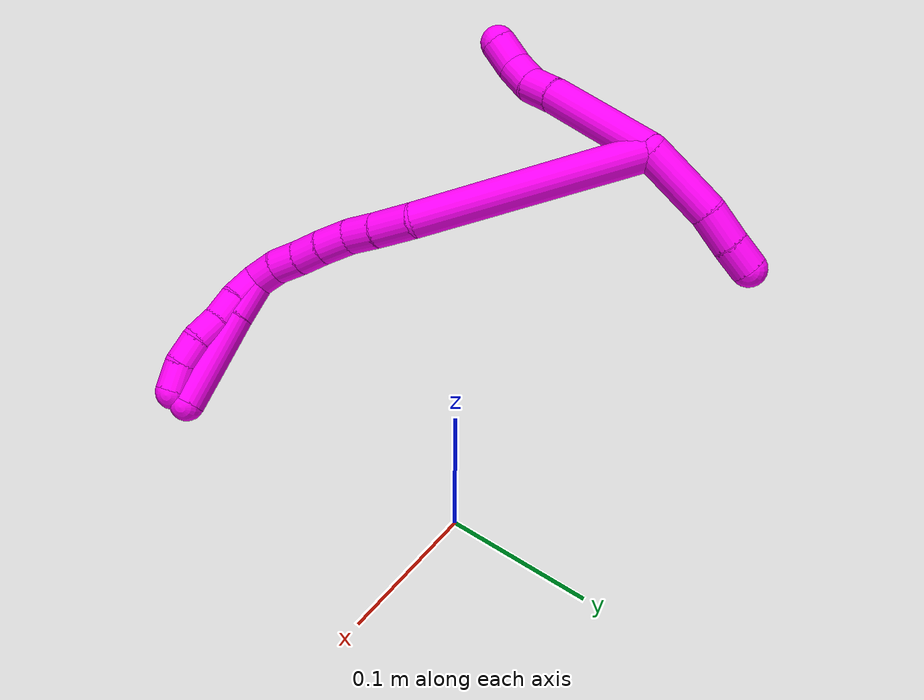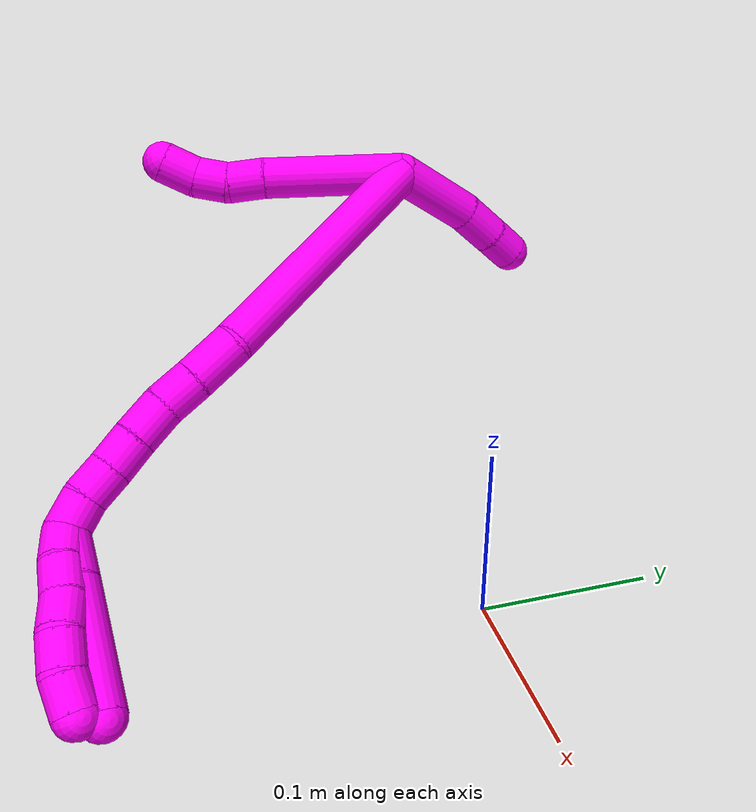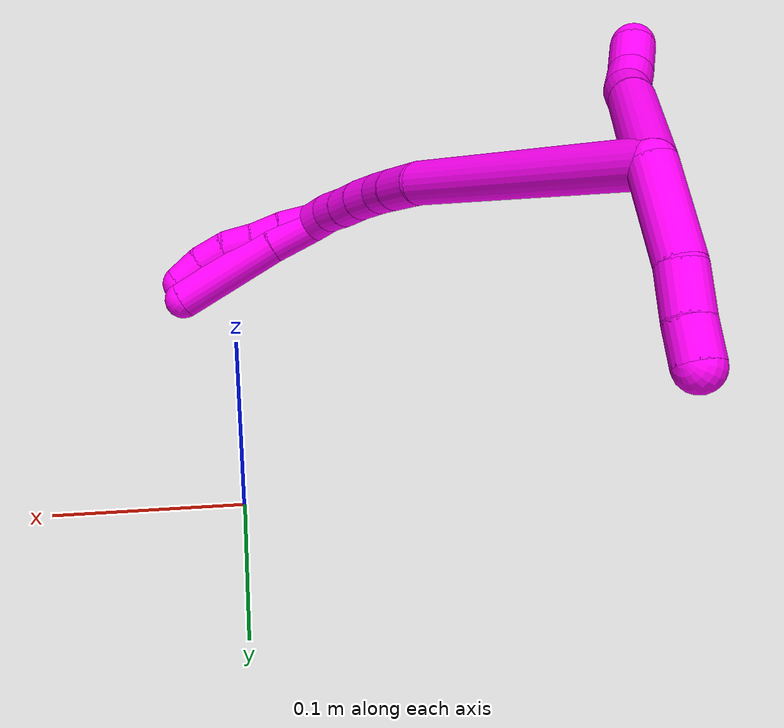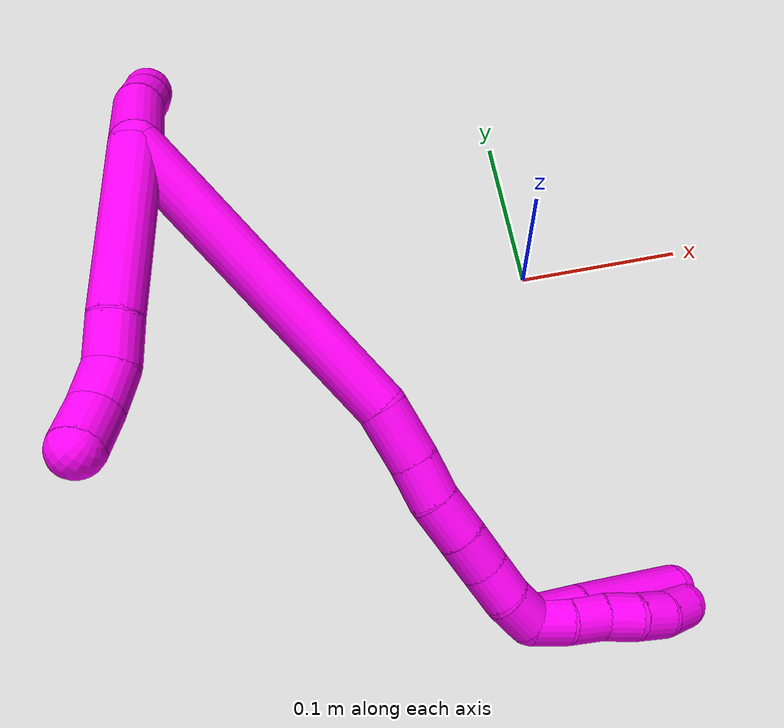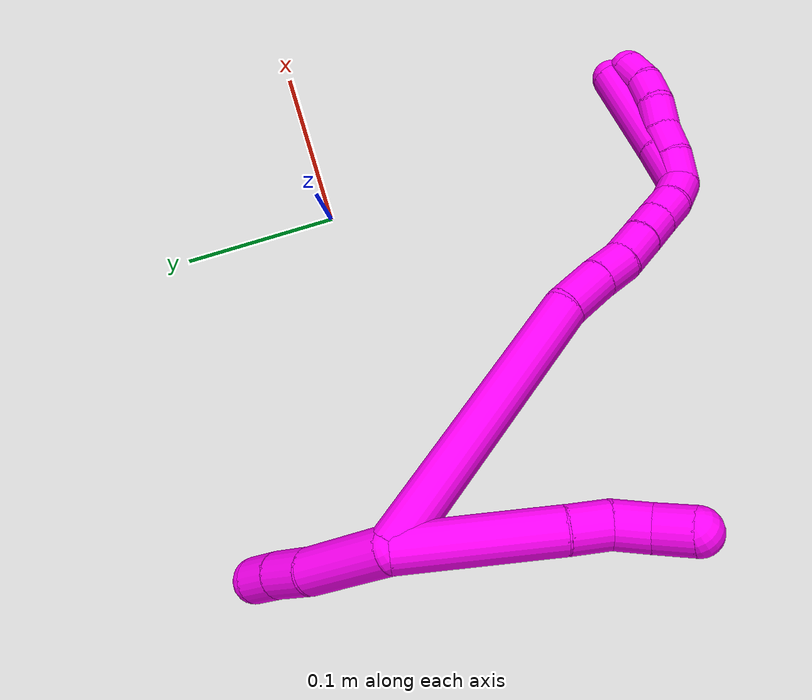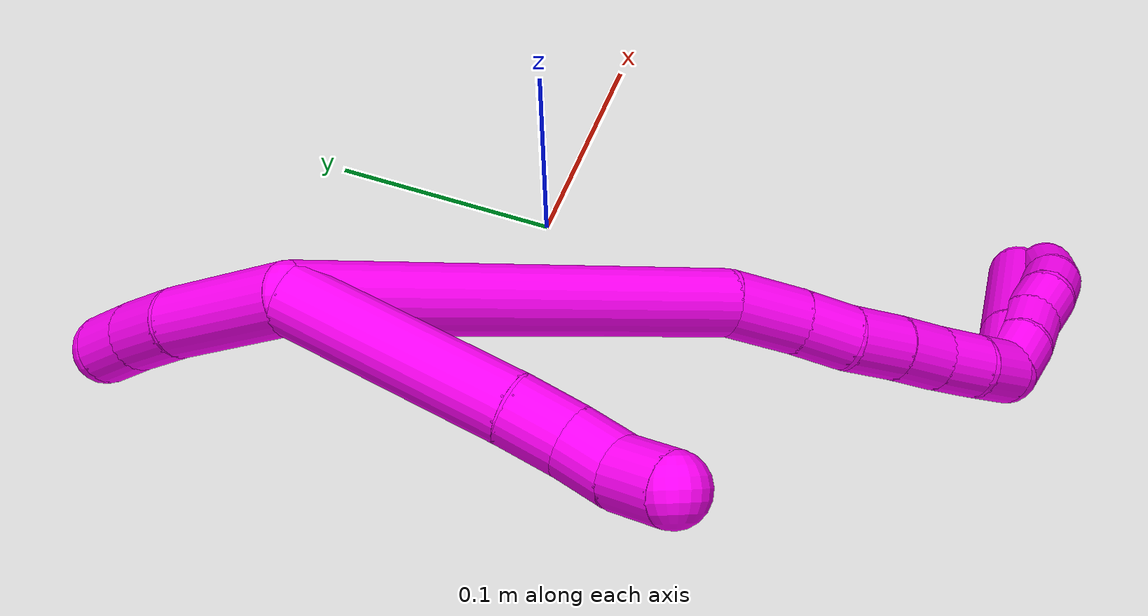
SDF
<sdf version="1.7">
 <world name="default">
  <model name="10">
   <static>0</static>
   <link name="10">
    <collision name="collision-cylinder-e_1_2_8">
     <pose>0.008393 -0.037059 -0.019782 2.06112 0.197188 0.326909</pose>
     <geometry><cylinder><radius>0.0125</radius><length>0.085677</length></cylinder></geometry>
     <surface>
      <friction><ode><mu>1.16</mu><mu2>1.16</mu2><slip1>0</slip1><slip2>0</slip2></ode></friction>
      <contact><ode><kp>1e+06</kp><kd>1</kd><max_vel>0</max_vel><min_depth>0.001</min_depth></ode></contact>
     </surface>
    </collision>
    <visual name="visual-cylinder-e_1_2_8">
     <pose>0.008393 -0.037059 -0.019782 2.06112 0.197188 0.326909</pose>
     <geometry><cylinder><radius>0.0125</radius><length>0.085677</length></cylinder></geometry>
     <material><ambient>1 0 0.964706 1</ambient></material>
    </visual>
    <collision name="collision-cylinder-e_2_8_9">
     <pose>0.019775 -0.083209 -0.045156 2.12228 0.273165 0.48224</pose>
     <geometry><cylinder><radius>0.0125</radius><length>0.022167</length></cylinder></geometry>
     <surface>
      <friction><ode><mu>1.16</mu><mu2>1.16</mu2><slip1>0</slip1><slip2>0</slip2></ode></friction>
      <contact><ode><kp>1e+06</kp><kd>1</kd><max_vel>0</max_vel><min_depth>0.001</min_depth></ode></contact>
     </surface>
    </collision>
    <visual name="visual-cylinder-e_2_8_9">
     <pose>0.019775 -0.083209 -0.045156 2.12228 0.273165 0.48224</pose>
     <geometry><cylinder><radius>0.0125</radius><length>0.022167</length></cylinder></geometry>
     <material><ambient>1 0 0.964706 1</ambient></material>
    </visual>
    <collision name="collision-cylinder-e_3_9_10">
     <pose>0.022374 -0.101177 -0.055748 2.0837 -0.038361 -0.065614</pose>
     <geometry><cylinder><radius>0.0125</radius><length>0.020393</length></cylinder></geometry>
     <surface>
      <friction><ode><mu>1.16</mu><mu2>1.16</mu2><slip1>0</slip1><slip2>0</slip2></ode></friction>
      <contact><ode><kp>1e+06</kp><kd>1</kd><max_vel>0</max_vel><min_depth>0.001</min_depth></ode></contact>
     </surface>
    </collision>
    <visual name="visual-cylinder-e_3_9_10">
     <pose>0.022374 -0.101177 -0.055748 2.0837 -0.038361 -0.065614</pose>
     <geometry><cylinder><radius>0.0125</radius><length>0.020393</length></cylinder></geometry>
     <material><ambient>1 0 0.964706 1</ambient></material>
    </visual>
    <collision name="collision-cylinder-e_4_10_6">
     <pose>0.01967 -0.120323 -0.063506 1.83323 -0.214278 -0.278691</pose>
     <geometry><cylinder><radius>0.0125</radius><length>0.021763</length></cylinder></geometry>
     <surface>
      <friction><ode><mu>1.16</mu><mu2>1.16</mu2><slip1>0</slip1><slip2>0</slip2></ode></friction>
      <contact><ode><kp>1e+06</kp><kd>1</kd><max_vel>0</max_vel><min_depth>0.001</min_depth></ode></contact>
     </surface>
    </collision>
    <visual name="visual-cylinder-e_4_10_6">
     <pose>0.01967 -0.120323 -0.063506 1.83323 -0.214278 -0.278691</pose>
     <geometry><cylinder><radius>0.0125</radius><length>0.021763</length></cylinder></geometry>
     <material><ambient>1 0 0.964706 1</ambient></material>
    </visual>
    <collision name="collision-cylinder-e_1_2_11">
     <pose>0.003135 0.026551 -0.002238 -1.65488 0.117121 -0.127381</pose>
     <geometry><cylinder><radius>0.0125</radius><length>0.053657</length></cylinder></geometry>
     <surface>
      <friction><ode><mu>1.16</mu><mu2>1.16</mu2><slip1>0</slip1><slip2>0</slip2></ode></friction>
      <contact><ode><kp>1e+06</kp><kd>1</kd><max_vel>0</max_vel><min_depth>0.001</min_depth></ode></contact>
     </surface>
    </collision>
    <visual name="visual-cylinder-e_1_2_11">
     <pose>0.003135 0.026551 -0.002238 -1.65488 0.117121 -0.127381</pose>
     <geometry><cylinder><radius>0.0125</radius><length>0.053657</length></cylinder></geometry>
     <material><ambient>1 0 0.964706 1</ambient></material>
    </visual>
    <collision name="collision-cylinder-e_2_11_12">
     <pose>0.00974 0.06538 -0.005887 -1.68528 0.273678 -0.306459</pose>
     <geometry><cylinder><radius>0.0125</radius><length>0.025674</length></cylinder></geometry>
     <surface>
      <friction><ode><mu>1.16</mu><mu2>1.16</mu2><slip1>0</slip1><slip2>0</slip2></ode></friction>
      <contact><ode><kp>1e+06</kp><kd>1</kd><max_vel>0</max_vel><min_depth>0.001</min_depth></ode></contact>
     </surface>
    </collision>
    <visual name="visual-cylinder-e_2_11_12">
     <pose>0.00974 0.06538 -0.005887 -1.68528 0.273678 -0.306459</pose>
     <geometry><cylinder><radius>0.0125</radius><length>0.025674</length></cylinder></geometry>
     <material><ambient>1 0 0.964706 1</ambient></material>
    </visual>
    <collision name="collision-cylinder-e_3_12_5">
     <pose>0.015622 0.087555 -0.00904 -1.74491 0.2357 -0.280235</pose>
     <geometry><cylinder><radius>0.0125</radius><length>0.020669</length></cylinder></geometry>
     <surface>
      <friction><ode><mu>1.16</mu><mu2>1.16</mu2><slip1>0</slip1><slip2>0</slip2></ode></friction>
      <contact><ode><kp>1e+06</kp><kd>1</kd><max_vel>0</max_vel><min_depth>0.001</min_depth></ode></contact>
     </surface>
    </collision>
    <visual name="visual-cylinder-e_3_12_5">
     <pose>0.015622 0.087555 -0.00904 -1.74491 0.2357 -0.280235</pose>
     <geometry><cylinder><radius>0.0125</radius><length>0.020669</length></cylinder></geometry>
     <material><ambient>1 0 0.964706 1</ambient></material>
    </visual>
    <collision name="collision-cylinder-e_1_2_13">
     <pose>0.068359 -0.045595 -0.001023 1.59323 0.982452 1.00123</pose>
     <geometry><cylinder><radius>0.0125</radius><length>0.164351</length></cylinder></geometry>
     <surface>
      <friction><ode><mu>1.16</mu><mu2>1.16</mu2><slip1>0</slip1><slip2>0</slip2></ode></friction>
      <contact><ode><kp>1e+06</kp><kd>1</kd><max_vel>0</max_vel><min_depth>0.001</min_depth></ode></contact>
     </surface>
    </collision>
    <visual name="visual-cylinder-e_1_2_13">
     <pose>0.068359 -0.045595 -0.001023 1.59323 0.982452 1.00123</pose>
     <geometry><cylinder><radius>0.0125</radius><length>0.164351</length></cylinder></geometry>
     <material><ambient>1 0 0.964706 1</ambient></material>
    </visual>
    <collision name="collision-cylinder-e_2_13_14">
     <pose>0.148705 -0.099357 -0.005565 1.9776 0.932534 1.30585</pose>
     <geometry><cylinder><radius>0.0125</radius><length>0.029853</length></cylinder></geometry>
     <surface>
      <friction><ode><mu>1.16</mu><mu2>1.16</mu2><slip1>0</slip1><slip2>0</slip2></ode></friction>
      <contact><ode><kp>1e+06</kp><kd>1</kd><max_vel>0</max_vel><min_depth>0.001</min_depth></ode></contact>
     </surface>
    </collision>
    <visual name="visual-cylinder-e_2_13_14">
     <pose>0.148705 -0.099357 -0.005565 1.9776 0.932534 1.30585</pose>
     <geometry><cylinder><radius>0.0125</radius><length>0.029853</length></cylinder></geometry>
     <material><ambient>1 0 0.964706 1</ambient></material>
    </visual>
    <collision name="collision-cylinder-e_3_14_15">
     <pose>0.169258 -0.113727 -0.01227 2.04539 0.887479 1.32316</pose>
     <geometry><cylinder><radius>0.0125</radius><length>0.022089</length></cylinder></geometry>
     <surface>
      <friction><ode><mu>1.16</mu><mu2>1.16</mu2><slip1>0</slip1><slip2>0</slip2></ode></friction>
      <contact><ode><kp>1e+06</kp><kd>1</kd><max_vel>0</max_vel><min_depth>0.001</min_depth></ode></contact>
     </surface>
    </collision>
    <visual name="visual-cylinder-e_3_14_15">
     <pose>0.169258 -0.113727 -0.01227 2.04539 0.887479 1.32316</pose>
     <geometry><cylinder><radius>0.0125</radius><length>0.022089</length></cylinder></geometry>
     <material><ambient>1 0 0.964706 1</ambient></material>
    </visual>
    <collision name="collision-cylinder-e_4_15_16">
     <pose>0.187843 -0.125414 -0.017375 1.90722 1.04531 1.36376</pose>
     <geometry><cylinder><radius>0.0125</radius><length>0.023164</length></cylinder></geometry>
     <surface>
      <friction><ode><mu>1.16</mu><mu2>1.16</mu2><slip1>0</slip1><slip2>0</slip2></ode></friction>
      <contact><ode><kp>1e+06</kp><kd>1</kd><max_vel>0</max_vel><min_depth>0.001</min_depth></ode></contact>
     </surface>
    </collision>
    <visual name="visual-cylinder-e_4_15_16">
     <pose>0.187843 -0.125414 -0.017375 1.90722 1.04531 1.36376</pose>
     <geometry><cylinder><radius>0.0125</radius><length>0.023164</length></cylinder></geometry>
     <material><ambient>1 0 0.964706 1</ambient></material>
    </visual>
    <collision name="collision-cylinder-e_5_16_17">
     <pose>0.206854 -0.135258 -0.021287 1.99979 1.08097 1.50297</pose>
     <geometry><cylinder><radius>0.0125</radius><length>0.020381</length></cylinder></geometry>
     <surface>
      <friction><ode><mu>1.16</mu><mu2>1.16</mu2><slip1>0</slip1><slip2>0</slip2></ode></friction>
      <contact><ode><kp>1e+06</kp><kd>1</kd><max_vel>0</max_vel><min_depth>0.001</min_depth></ode></contact>
     </surface>
    </collision>
    <visual name="visual-cylinder-e_5_16_17">
     <pose>0.206854 -0.135258 -0.021287 1.99979 1.08097 1.50297</pose>
     <geometry><cylinder><radius>0.0125</radius><length>0.020381</length></cylinder></geometry>
     <material><ambient>1 0 0.964706 1</ambient></material>
    </visual>
    <collision name="collision-cylinder-e_6_17_18">
     <pose>0.224531 -0.144375 -0.024974 1.91257 1.04413 1.36798</pose>
     <geometry><cylinder><radius>0.0125</radius><length>0.020092</length></cylinder></geometry>
     <surface>
      <friction><ode><mu>1.16</mu><mu2>1.16</mu2><slip1>0</slip1><slip2>0</slip2></ode></friction>
      <contact><ode><kp>1e+06</kp><kd>1</kd><max_vel>0</max_vel><min_depth>0.001</min_depth></ode></contact>
     </surface>
    </collision>
    <visual name="visual-cylinder-e_6_17_18">
     <pose>0.224531 -0.144375 -0.024974 1.91257 1.04413 1.36798</pose>
     <geometry><cylinder><radius>0.0125</radius><length>0.020092</length></cylinder></geometry>
     <material><ambient>1 0 0.964706 1</ambient></material>
    </visual>
    <collision name="collision-cylinder-e_7_18_1">
     <pose>0.242762 -0.152014 -0.027788 1.94219 1.25761 1.63257</pose>
     <geometry><cylinder><radius>0.0125</radius><length>0.02007</length></cylinder></geometry>
     <surface>
      <friction><ode><mu>1.16</mu><mu2>1.16</mu2><slip1>0</slip1><slip2>0</slip2></ode></friction>
      <contact><ode><kp>1e+06</kp><kd>1</kd><max_vel>0</max_vel><min_depth>0.001</min_depth></ode></contact>
     </surface>
    </collision>
    <visual name="visual-cylinder-e_7_18_1">
     <pose>0.242762 -0.152014 -0.027788 1.94219 1.25761 1.63257</pose>
     <geometry><cylinder><radius>0.0125</radius><length>0.02007</length></cylinder></geometry>
     <material><ambient>1 0 0.964706 1</ambient></material>
    </visual>
    <collision name="collision-cylinder-e_1_1_19">
     <pose>0.264981 -0.15183 -0.021459 -0.390242 1.00447 -0.216239</pose>
     <geometry><cylinder><radius>0.0125</radius><length>0.030033</length></cylinder></geometry>
     <surface>
      <friction><ode><mu>1.16</mu><mu2>1.16</mu2><slip1>0</slip1><slip2>0</slip2></ode></friction>
      <contact><ode><kp>1e+06</kp><kd>1</kd><max_vel>0</max_vel><min_depth>0.001</min_depth></ode></contact>
     </surface>
    </collision>
    <visual name="visual-cylinder-e_1_1_19">
     <pose>0.264981 -0.15183 -0.021459 -0.390242 1.00447 -0.216239</pose>
     <geometry><cylinder><radius>0.0125</radius><length>0.030033</length></cylinder></geometry>
     <material><ambient>1 0 0.964706 1</ambient></material>
    </visual>
    <collision name="collision-cylinder-e_2_19_4">
     <pose>0.308196 -0.14065 0.000997 -0.495737 1.06145 -0.294896</pose>
     <geometry><cylinder><radius>0.0125</radius><length>0.069967</length></cylinder></geometry>
     <surface>
      <friction><ode><mu>1.16</mu><mu2>1.16</mu2><slip1>0</slip1><slip2>0</slip2></ode></friction>
      <contact><ode><kp>1e+06</kp><kd>1</kd><max_vel>0</max_vel><min_depth>0.001</min_depth></ode></contact>
     </surface>
    </collision>
    <visual name="visual-cylinder-e_2_19_4">
     <pose>0.308196 -0.14065 0.000997 -0.495737 1.06145 -0.294896</pose>
     <geometry><cylinder><radius>0.0125</radius><length>0.069967</length></cylinder></geometry>
     <material><ambient>1 0 0.964706 1</ambient></material>
    </visual>
    <collision name="collision-cylinder-e_1_1_20">
     <pose>0.260656 -0.155646 -0.023454 0.136917 0.987558 0.073777</pose>
     <geometry><cylinder><radius>0.0125</radius><length>0.02</length></cylinder></geometry>
     <surface>
      <friction><ode><mu>1.16</mu><mu2>1.16</mu2><slip1>0</slip1><slip2>0</slip2></ode></friction>
      <contact><ode><kp>1e+06</kp><kd>1</kd><max_vel>0</max_vel><min_depth>0.001</min_depth></ode></contact>
     </surface>
    </collision>
    <visual name="visual-cylinder-e_1_1_20">
     <pose>0.260656 -0.155646 -0.023454 0.136917 0.987558 0.073777</pose>
     <geometry><cylinder><radius>0.0125</radius><length>0.02</length></cylinder></geometry>
     <material><ambient>1 0 0.964706 1</ambient></material>
    </visual>
    <collision name="collision-cylinder-e_2_20_21">
     <pose>0.277533 -0.155485 -0.012861 -0.175799 1.02189 -0.098728</pose>
     <geometry><cylinder><radius>0.0125</radius><length>0.02</length></cylinder></geometry>
     <surface>
      <friction><ode><mu>1.16</mu><mu2>1.16</mu2><slip1>0</slip1><slip2>0</slip2></ode></friction>
      <contact><ode><kp>1e+06</kp><kd>1</kd><max_vel>0</max_vel><min_depth>0.001</min_depth></ode></contact>
     </surface>
    </collision>
    <visual name="visual-cylinder-e_2_20_21">
     <pose>0.277533 -0.155485 -0.012861 -0.175799 1.02189 -0.098728</pose>
     <geometry><cylinder><radius>0.0125</radius><length>0.02</length></cylinder></geometry>
     <material><ambient>1 0 0.964706 1</ambient></material>
    </visual>
    <collision name="collision-cylinder-e_3_21_22">
     <pose>0.294651 -0.15527 -0.002647 0.136375 1.03268 0.077503</pose>
     <geometry><cylinder><radius>0.0125</radius><length>0.02</length></cylinder></geometry>
     <surface>
      <friction><ode><mu>1.16</mu><mu2>1.16</mu2><slip1>0</slip1><slip2>0</slip2></ode></friction>
      <contact><ode><kp>1e+06</kp><kd>1</kd><max_vel>0</max_vel><min_depth>0.001</min_depth></ode></contact>
     </surface>
    </collision>
    <visual name="visual-cylinder-e_3_21_22">
     <pose>0.294651 -0.15527 -0.002647 0.136375 1.03268 0.077503</pose>
     <geometry><cylinder><radius>0.0125</radius><length>0.02</length></cylinder></geometry>
     <material><ambient>1 0 0.964706 1</ambient></material>
    </visual>
    <collision name="collision-cylinder-e_4_22_23">
     <pose>0.312344 -0.154553 0.006315 -0.34894 1.14469 -0.226156</pose>
     <geometry><cylinder><radius>0.0125</radius><length>0.02</length></cylinder></geometry>
     <surface>
      <friction><ode><mu>1.16</mu><mu2>1.16</mu2><slip1>0</slip1><slip2>0</slip2></ode></friction>
      <contact><ode><kp>1e+06</kp><kd>1</kd><max_vel>0</max_vel><min_depth>0.001</min_depth></ode></contact>
     </surface>
    </collision>
    <visual name="visual-cylinder-e_4_22_23">
     <pose>0.312344 -0.154553 0.006315 -0.34894 1.14469 -0.226156</pose>
     <geometry><cylinder><radius>0.0125</radius><length>0.02</length></cylinder></geometry>
     <material><ambient>1 0 0.964706 1</ambient></material>
    </visual>
    <collision name="collision-cylinder-e_5_23_3">
     <pose>0.33007 -0.149229 0.013422 -0.881598 1.03931 -0.527225</pose>
     <geometry><cylinder><radius>0.0125</radius><length>0.02</length></cylinder></geometry>
     <surface>
      <friction><ode><mu>1.16</mu><mu2>1.16</mu2><slip1>0</slip1><slip2>0</slip2></ode></friction>
      <contact><ode><kp>1e+06</kp><kd>1</kd><max_vel>0</max_vel><min_depth>0.001</min_depth></ode></contact>
     </surface>
    </collision>
    <visual name="visual-cylinder-e_5_23_3">
     <pose>0.33007 -0.149229 0.013422 -0.881598 1.03931 -0.527225</pose>
     <geometry><cylinder><radius>0.0125</radius><length>0.02</length></cylinder></geometry>
     <material><ambient>1 0 0.964706 1</ambient></material>
    </visual>
    <collision name="collision-sphere-3">
     <pose>0.338691 -0.145317 0.016645 0 -0 0</pose>
     <geometry><sphere><radius>0.0125</radius></sphere></geometry>
     <surface>
      <friction><ode><mu>1.16</mu><mu2>1.16</mu2><slip1>0</slip1><slip2>0</slip2></ode></friction>
      <contact><ode><kp>1e+06</kp><kd>1</kd><max_vel>0</max_vel><min_depth>0.001</min_depth></ode></contact>
     </surface>
    </collision>
    <visual name="visual-sphere-3">
     <pose>0.338691 -0.145317 0.016645 0 -0 0</pose>
     <geometry><sphere><radius>0.0125</radius></sphere></geometry>
     <material><ambient>1 0 0.964706 1</ambient></material>
    </visual>
    <collision name="collision-sphere-23">
     <pose>0.32145 -0.15314 0.010199 0 -0 0</pose>
     <geometry><sphere><radius>0.0125</radius></sphere></geometry>
     <surface>
      <friction><ode><mu>1.16</mu><mu2>1.16</mu2><slip1>0</slip1><slip2>0</slip2></ode></friction>
      <contact><ode><kp>1e+06</kp><kd>1</kd><max_vel>0</max_vel><min_depth>0.001</min_depth></ode></contact>
     </surface>
    </collision>
    <visual name="visual-sphere-23">
     <pose>0.32145 -0.15314 0.010199 0 -0 0</pose>
     <geometry><sphere><radius>0.0125</radius></sphere></geometry>
     <material><ambient>1 0 0.964706 1</ambient></material>
    </visual>
    <collision name="collision-sphere-22">
     <pose>0.303238 -0.155966 0.002431 0 -0 0</pose>
     <geometry><sphere><radius>0.0125</radius></sphere></geometry>
     <surface>
      <friction><ode><mu>1.16</mu><mu2>1.16</mu2><slip1>0</slip1><slip2>0</slip2></ode></friction>
      <contact><ode><kp>1e+06</kp><kd>1</kd><max_vel>0</max_vel><min_depth>0.001</min_depth></ode></contact>
     </surface>
    </collision>
    <visual name="visual-sphere-22">
     <pose>0.303238 -0.155966 0.002431 0 -0 0</pose>
     <geometry><sphere><radius>0.0125</radius></sphere></geometry>
     <material><ambient>1 0 0.964706 1</ambient></material>
    </visual>
    <collision name="collision-sphere-21">
     <pose>0.286064 -0.154573 -0.007724 0 -0 0</pose>
     <geometry><sphere><radius>0.0125</radius></sphere></geometry>
     <surface>
      <friction><ode><mu>1.16</mu><mu2>1.16</mu2><slip1>0</slip1><slip2>0</slip2></ode></friction>
      <contact><ode><kp>1e+06</kp><kd>1</kd><max_vel>0</max_vel><min_depth>0.001</min_depth></ode></contact>
     </surface>
    </collision>
    <visual name="visual-sphere-21">
     <pose>0.286064 -0.154573 -0.007724 0 -0 0</pose>
     <geometry><sphere><radius>0.0125</radius></sphere></geometry>
     <material><ambient>1 0 0.964706 1</ambient></material>
    </visual>
    <collision name="collision-sphere-20">
     <pose>0.269002 -0.156398 -0.017999 0 -0 0</pose>
     <geometry><sphere><radius>0.0125</radius></sphere></geometry>
     <surface>
      <friction><ode><mu>1.16</mu><mu2>1.16</mu2><slip1>0</slip1><slip2>0</slip2></ode></friction>
      <contact><ode><kp>1e+06</kp><kd>1</kd><max_vel>0</max_vel><min_depth>0.001</min_depth></ode></contact>
     </surface>
    </collision>
    <visual name="visual-sphere-20">
     <pose>0.269002 -0.156398 -0.017999 0 -0 0</pose>
     <geometry><sphere><radius>0.0125</radius></sphere></geometry>
     <material><ambient>1 0 0.964706 1</ambient></material>
    </visual>
    <collision name="collision-sphere-4">
     <pose>0.338738 -0.132536 0.016002 0 -0 0</pose>
     <geometry><sphere><radius>0.0125</radius></sphere></geometry>
     <surface>
      <friction><ode><mu>1.16</mu><mu2>1.16</mu2><slip1>0</slip1><slip2>0</slip2></ode></friction>
      <contact><ode><kp>1e+06</kp><kd>1</kd><max_vel>0</max_vel><min_depth>0.001</min_depth></ode></contact>
     </surface>
    </collision>
    <visual name="visual-sphere-4">
     <pose>0.338738 -0.132536 0.016002 0 -0 0</pose>
     <geometry><sphere><radius>0.0125</radius></sphere></geometry>
     <material><ambient>1 0 0.964706 1</ambient></material>
    </visual>
    <collision name="collision-sphere-11">
     <pose>0.00627 0.053102 -0.004476 0 -0 0</pose>
     <geometry><sphere><radius>0.0125</radius></sphere></geometry>
     <surface>
      <friction><ode><mu>1.16</mu><mu2>1.16</mu2><slip1>0</slip1><slip2>0</slip2></ode></friction>
      <contact><ode><kp>1e+06</kp><kd>1</kd><max_vel>0</max_vel><min_depth>0.001</min_depth></ode></contact>
     </surface>
    </collision>
    <visual name="visual-sphere-11">
     <pose>0.00627 0.053102 -0.004476 0 -0 0</pose>
     <geometry><sphere><radius>0.0125</radius></sphere></geometry>
     <material><ambient>1 0 0.964706 1</ambient></material>
    </visual>
    <collision name="collision-sphere-6">
     <pose>0.017356 -0.130592 -0.066264 0 -0 0</pose>
     <geometry><sphere><radius>0.0125</radius></sphere></geometry>
     <surface>
      <friction><ode><mu>1.16</mu><mu2>1.16</mu2><slip1>0</slip1><slip2>0</slip2></ode></friction>
      <contact><ode><kp>1e+06</kp><kd>1</kd><max_vel>0</max_vel><min_depth>0.001</min_depth></ode></contact>
     </surface>
    </collision>
    <visual name="visual-sphere-6">
     <pose>0.017356 -0.130592 -0.066264 0 -0 0</pose>
     <geometry><sphere><radius>0.0125</radius></sphere></geometry>
     <material><ambient>1 0 0.964706 1</ambient></material>
    </visual>
    <collision name="collision-sphere-10">
     <pose>0.021983 -0.110055 -0.060748 0 -0 0</pose>
     <geometry><sphere><radius>0.0125</radius></sphere></geometry>
     <surface>
      <friction><ode><mu>1.16</mu><mu2>1.16</mu2><slip1>0</slip1><slip2>0</slip2></ode></friction>
      <contact><ode><kp>1e+06</kp><kd>1</kd><max_vel>0</max_vel><min_depth>0.001</min_depth></ode></contact>
     </surface>
    </collision>
    <visual name="visual-sphere-10">
     <pose>0.021983 -0.110055 -0.060748 0 -0 0</pose>
     <geometry><sphere><radius>0.0125</radius></sphere></geometry>
     <material><ambient>1 0 0.964706 1</ambient></material>
    </visual>
    <collision name="collision-sphere-9">
     <pose>0.022766 -0.092299 -0.050748 0 -0 0</pose>
     <geometry><sphere><radius>0.0125</radius></sphere></geometry>
     <surface>
      <friction><ode><mu>1.16</mu><mu2>1.16</mu2><slip1>0</slip1><slip2>0</slip2></ode></friction>
      <contact><ode><kp>1e+06</kp><kd>1</kd><max_vel>0</max_vel><min_depth>0.001</min_depth></ode></contact>
     </surface>
    </collision>
    <visual name="visual-sphere-9">
     <pose>0.022766 -0.092299 -0.050748 0 -0 0</pose>
     <geometry><sphere><radius>0.0125</radius></sphere></geometry>
     <material><ambient>1 0 0.964706 1</ambient></material>
    </visual>
    <collision name="collision-sphere-2">
     <geometry><sphere><radius>0.0125</radius></sphere></geometry>
     <surface>
      <friction><ode><mu>1.16</mu><mu2>1.16</mu2><slip1>0</slip1><slip2>0</slip2></ode></friction>
      <contact><ode><kp>1e+06</kp><kd>1</kd><max_vel>0</max_vel><min_depth>0.001</min_depth></ode></contact>
     </surface>
    </collision>
    <visual name="visual-sphere-2">
     <geometry><sphere><radius>0.0125</radius></sphere></geometry>
     <material><ambient>1 0 0.964706 1</ambient></material>
    </visual>
    <collision name="collision-sphere-19">
     <pose>0.277653 -0.148765 -0.014008 0 -0 0</pose>
     <geometry><sphere><radius>0.0125</radius></sphere></geometry>
     <surface>
      <friction><ode><mu>1.16</mu><mu2>1.16</mu2><slip1>0</slip1><slip2>0</slip2></ode></friction>
      <contact><ode><kp>1e+06</kp><kd>1</kd><max_vel>0</max_vel><min_depth>0.001</min_depth></ode></contact>
     </surface>
    </collision>
    <visual name="visual-sphere-19">
     <pose>0.277653 -0.148765 -0.014008 0 -0 0</pose>
     <geometry><sphere><radius>0.0125</radius></sphere></geometry>
     <material><ambient>1 0 0.964706 1</ambient></material>
    </visual>
    <collision name="collision-sphere-8">
     <pose>0.016785 -0.074118 -0.039564 0 -0 0</pose>
     <geometry><sphere><radius>0.0125</radius></sphere></geometry>
     <surface>
      <friction><ode><mu>1.16</mu><mu2>1.16</mu2><slip1>0</slip1><slip2>0</slip2></ode></friction>
      <contact><ode><kp>1e+06</kp><kd>1</kd><max_vel>0</max_vel><min_depth>0.001</min_depth></ode></contact>
     </surface>
    </collision>
    <visual name="visual-sphere-8">
     <pose>0.016785 -0.074118 -0.039564 0 -0 0</pose>
     <geometry><sphere><radius>0.0125</radius></sphere></geometry>
     <material><ambient>1 0 0.964706 1</ambient></material>
    </visual>
    <collision name="collision-sphere-12">
     <pose>0.013209 0.077658 -0.007299 0 -0 0</pose>
     <geometry><sphere><radius>0.0125</radius></sphere></geometry>
     <surface>
      <friction><ode><mu>1.16</mu><mu2>1.16</mu2><slip1>0</slip1><slip2>0</slip2></ode></friction>
      <contact><ode><kp>1e+06</kp><kd>1</kd><max_vel>0</max_vel><min_depth>0.001</min_depth></ode></contact>
     </surface>
    </collision>
    <visual name="visual-sphere-12">
     <pose>0.013209 0.077658 -0.007299 0 -0 0</pose>
     <geometry><sphere><radius>0.0125</radius></sphere></geometry>
     <material><ambient>1 0 0.964706 1</ambient></material>
    </visual>
    <collision name="collision-sphere-5">
     <pose>0.018036 0.097452 -0.010781 0 -0 0</pose>
     <geometry><sphere><radius>0.0125</radius></sphere></geometry>
     <surface>
      <friction><ode><mu>1.16</mu><mu2>1.16</mu2><slip1>0</slip1><slip2>0</slip2></ode></friction>
      <contact><ode><kp>1e+06</kp><kd>1</kd><max_vel>0</max_vel><min_depth>0.001</min_depth></ode></contact>
     </surface>
    </collision>
    <visual name="visual-sphere-5">
     <pose>0.018036 0.097452 -0.010781 0 -0 0</pose>
     <geometry><sphere><radius>0.0125</radius></sphere></geometry>
     <material><ambient>1 0 0.964706 1</ambient></material>
    </visual>
    <collision name="collision-sphere-13">
     <pose>0.136717 -0.091189 -0.002046 0 -0 0</pose>
     <geometry><sphere><radius>0.0125</radius></sphere></geometry>
     <surface>
      <friction><ode><mu>1.16</mu><mu2>1.16</mu2><slip1>0</slip1><slip2>0</slip2></ode></friction>
      <contact><ode><kp>1e+06</kp><kd>1</kd><max_vel>0</max_vel><min_depth>0.001</min_depth></ode></contact>
     </surface>
    </collision>
    <visual name="visual-sphere-13">
     <pose>0.136717 -0.091189 -0.002046 0 -0 0</pose>
     <geometry><sphere><radius>0.0125</radius></sphere></geometry>
     <material><ambient>1 0 0.964706 1</ambient></material>
    </visual>
    <collision name="collision-sphere-14">
     <pose>0.160693 -0.107525 -0.009084 0 -0 0</pose>
     <geometry><sphere><radius>0.0125</radius></sphere></geometry>
     <surface>
      <friction><ode><mu>1.16</mu><mu2>1.16</mu2><slip1>0</slip1><slip2>0</slip2></ode></friction>
      <contact><ode><kp>1e+06</kp><kd>1</kd><max_vel>0</max_vel><min_depth>0.001</min_depth></ode></contact>
     </surface>
    </collision>
    <visual name="visual-sphere-14">
     <pose>0.160693 -0.107525 -0.009084 0 -0 0</pose>
     <geometry><sphere><radius>0.0125</radius></sphere></geometry>
     <material><ambient>1 0 0.964706 1</ambient></material>
    </visual>
    <collision name="collision-sphere-15">
     <pose>0.177823 -0.11993 -0.015457 0 -0 0</pose>
     <geometry><sphere><radius>0.0125</radius></sphere></geometry>
     <surface>
      <friction><ode><mu>1.16</mu><mu2>1.16</mu2><slip1>0</slip1><slip2>0</slip2></ode></friction>
      <contact><ode><kp>1e+06</kp><kd>1</kd><max_vel>0</max_vel><min_depth>0.001</min_depth></ode></contact>
     </surface>
    </collision>
    <visual name="visual-sphere-15">
     <pose>0.177823 -0.11993 -0.015457 0 -0 0</pose>
     <geometry><sphere><radius>0.0125</radius></sphere></geometry>
     <material><ambient>1 0 0.964706 1</ambient></material>
    </visual>
    <collision name="collision-sphere-16">
     <pose>0.197862 -0.130898 -0.019293 0 -0 0</pose>
     <geometry><sphere><radius>0.0125</radius></sphere></geometry>
     <surface>
      <friction><ode><mu>1.16</mu><mu2>1.16</mu2><slip1>0</slip1><slip2>0</slip2></ode></friction>
      <contact><ode><kp>1e+06</kp><kd>1</kd><max_vel>0</max_vel><min_depth>0.001</min_depth></ode></contact>
     </surface>
    </collision>
    <visual name="visual-sphere-16">
     <pose>0.197862 -0.130898 -0.019293 0 -0 0</pose>
     <geometry><sphere><radius>0.0125</radius></sphere></geometry>
     <material><ambient>1 0 0.964706 1</ambient></material>
    </visual>
    <collision name="collision-sphere-17">
     <pose>0.215846 -0.139618 -0.023281 0 -0 0</pose>
     <geometry><sphere><radius>0.0125</radius></sphere></geometry>
     <surface>
      <friction><ode><mu>1.16</mu><mu2>1.16</mu2><slip1>0</slip1><slip2>0</slip2></ode></friction>
      <contact><ode><kp>1e+06</kp><kd>1</kd><max_vel>0</max_vel><min_depth>0.001</min_depth></ode></contact>
     </surface>
    </collision>
    <visual name="visual-sphere-17">
     <pose>0.215846 -0.139618 -0.023281 0 -0 0</pose>
     <geometry><sphere><radius>0.0125</radius></sphere></geometry>
     <material><ambient>1 0 0.964706 1</ambient></material>
    </visual>
    <collision name="collision-sphere-18">
     <pose>0.233215 -0.149133 -0.026666 0 -0 0</pose>
     <geometry><sphere><radius>0.0125</radius></sphere></geometry>
     <surface>
      <friction><ode><mu>1.16</mu><mu2>1.16</mu2><slip1>0</slip1><slip2>0</slip2></ode></friction>
      <contact><ode><kp>1e+06</kp><kd>1</kd><max_vel>0</max_vel><min_depth>0.001</min_depth></ode></contact>
     </surface>
    </collision>
    <visual name="visual-sphere-18">
     <pose>0.233215 -0.149133 -0.026666 0 -0 0</pose>
     <geometry><sphere><radius>0.0125</radius></sphere></geometry>
     <material><ambient>1 0 0.964706 1</ambient></material>
    </visual>
    <collision name="collision-sphere-1">
     <pose>0.252309 -0.154895 -0.02891 0 -0 0</pose>
     <geometry><sphere><radius>0.0125</radius></sphere></geometry>
     <surface>
      <friction><ode><mu>1.16</mu><mu2>1.16</mu2><slip1>0</slip1><slip2>0</slip2></ode></friction>
      <contact><ode><kp>1e+06</kp><kd>1</kd><max_vel>0</max_vel><min_depth>0.001</min_depth></ode></contact>
     </surface>
    </collision>
    <visual name="visual-sphere-1">
     <pose>0.252309 -0.154895 -0.02891 0 -0 0</pose>
     <geometry><sphere><radius>0.0125</radius></sphere></geometry>
     <material><ambient>1 0 0.964706 1</ambient></material>
    </visual>
    <inertial>
     <pose>0.132231 -0.078904 -0.012178 0 -0 0</pose>
     <mass>0.75</mass>
     <inertia>
      <ixx>0.000436</ixx>
      <ixy>0</ixy>
      <ixz>0</ixz>
      <iyy>0.000462</iyy>
      <iyz>0</iyz>
      <izz>-0.000135</izz>
     </inertia>
    </inertial>
   </link>
   <pose>-0.193883 0.010249 0.191506 -0.691478 0.813406 -0.464357</pose>
  </model>
 </world>
</sdf>
